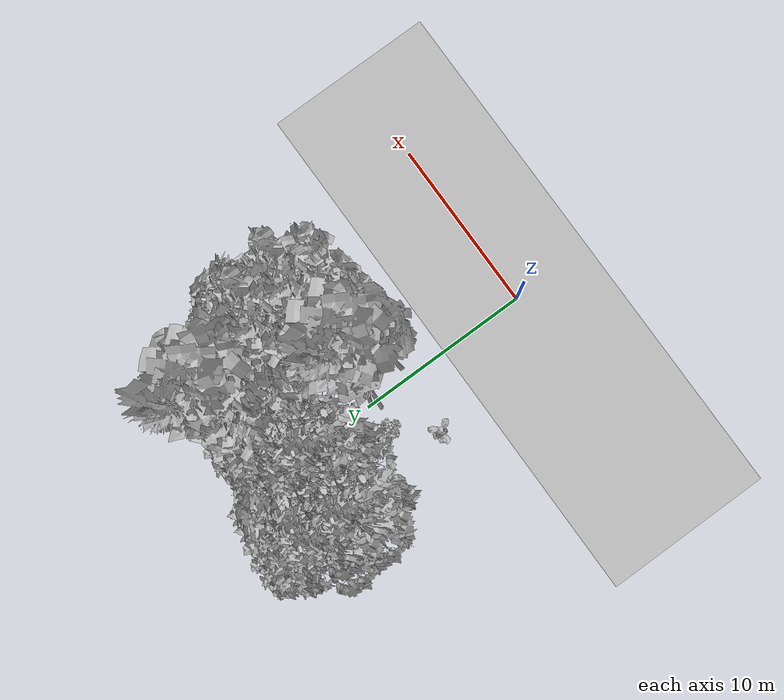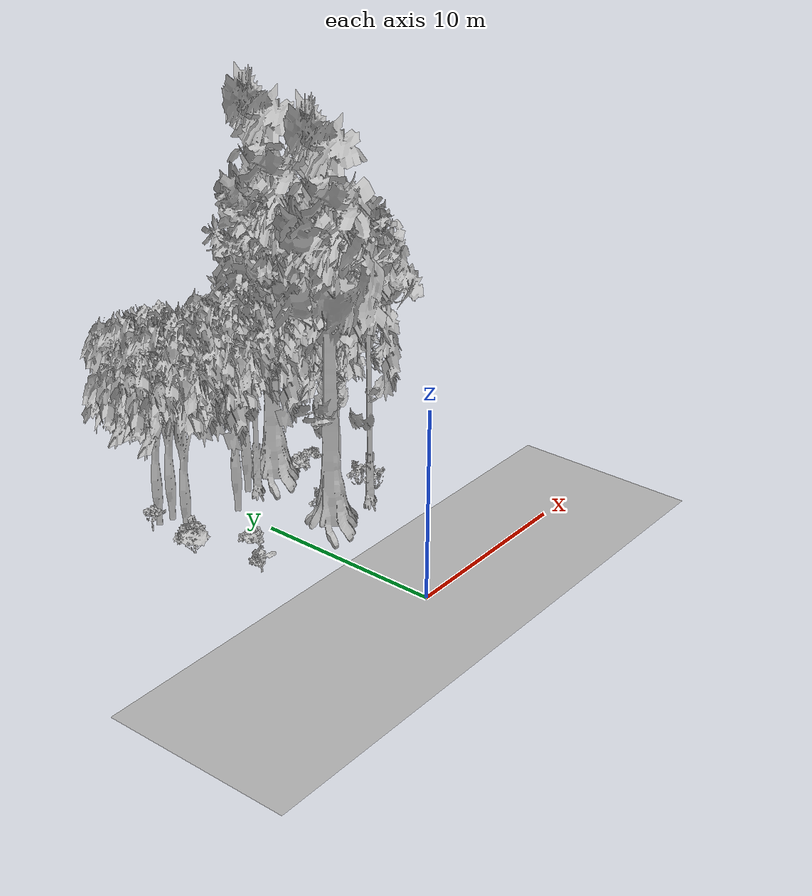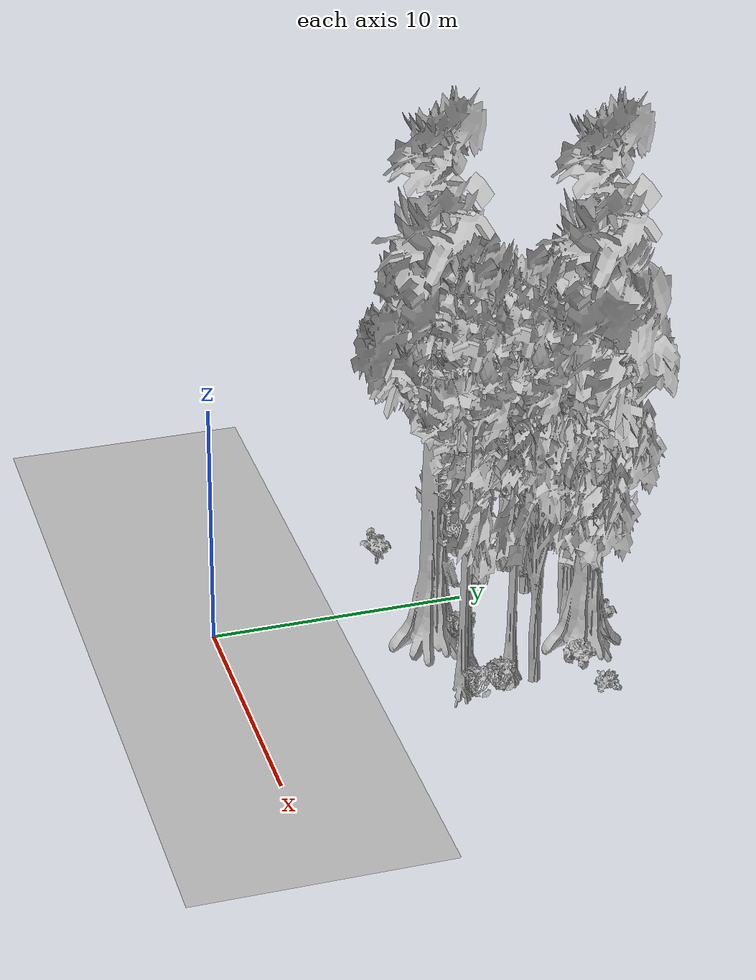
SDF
<sdf version="1.7">
 <world name="default">
  <model name="ground_plane">
   <static>1</static>
   <link name="link">
    <collision name="collision">
     <geometry><plane><normal>0 0 1</normal><size>100 100</size></plane></geometry>
     <surface><contact><ode><min_depth>0.01</min_depth><max_vel>0</max_vel></ode></contact></surface>
    </collision>
    <visual name="grass">
     <cast_shadows>0</cast_shadows>
     <geometry>
      <mesh>
       <scale>0.5814285714285714 0.18142857142857144 0.1</scale>
       <uri>file://grass_plane/meshes/grass_plane.dae</uri>
      </mesh>
     </geometry>
    </visual>
   </link>
  </model>
  <model name="Tree 15">
   <static>1</static>
   <pose>4.243417663001956 13.656715987898252 0 1.57079 -0 0</pose>
   <link name="link">
    <collision name="collision">
     <geometry><mesh><scale>3.5 5 3.5</scale><uri>model://tree_4/meshes/tree_4.obj</uri></mesh></geometry>
    </collision>
    <visual name="visual">
     <geometry><mesh><scale>3.5 5 3.5</scale><uri>model://tree_4/meshes/tree_4.obj</uri></mesh></geometry>
    </visual>
   </link>
  </model>
  <model name="Tree 93">
   <static>1</static>
   <pose>6.126630006865383 10.89849238980495 0 1.57079 -0 0</pose>
   <link name="link">
    <collision name="collision">
     <geometry><mesh><scale>3.5 5 3.5</scale><uri>model://tree_2/meshes/tree_2.obj</uri></mesh></geometry>
    </collision>
    <visual name="visual">
     <geometry><mesh><scale>3.5 5 3.5</scale><uri>model://tree_2/meshes/tree_2.obj</uri></mesh></geometry>
    </visual>
   </link>
  </model>
  <model name="Tree 119">
   <static>1</static>
   <pose>0.21786584108833296 12.601987681780127 0 1.57079 -0 0</pose>
   <link name="link">
    <collision name="collision">
     <geometry><mesh><scale>3.5 5 3.5</scale><uri>model://tree_2/meshes/tree_2.obj</uri></mesh></geometry>
    </collision>
    <visual name="visual">
     <geometry><mesh><scale>3.5 5 3.5</scale><uri>model://tree_2/meshes/tree_2.obj</uri></mesh></geometry>
    </visual>
   </link>
  </model>
  <model name="Tree 122">
   <static>1</static>
   <pose>-2.5506910763679613 14.610958272430768 0 1.57079 -0 0</pose>
   <link name="link">
    <collision name="collision">
     <geometry><mesh><scale>3.5 5 3.5</scale><uri>model://tree_2/meshes/tree_2.obj</uri></mesh></geometry>
    </collision>
    <visual name="visual">
     <geometry><mesh><scale>3.5 5 3.5</scale><uri>model://tree_2/meshes/tree_2.obj</uri></mesh></geometry>
    </visual>
   </link>
  </model>
  <model name="Tree 195">
   <static>1</static>
   <pose>5.762038549386617 8.203302063644621 0 1.57079 -0 0</pose>
   <link name="link">
    <collision name="collision">
     <geometry><mesh><scale>3.5 5 3.5</scale><uri>model://tree_9/meshes/tree_9.obj</uri></mesh></geometry>
    </collision>
    <visual name="visual">
     <geometry><mesh><scale>3.5 5 3.5</scale><uri>model://tree_9/meshes/tree_9.obj</uri></mesh></geometry>
    </visual>
   </link>
  </model>
  <model name="Tree 200">
   <static>1</static>
   <pose>-3.3457300089544475 14.752625470887217 0 1.57079 -0 0</pose>
   <link name="link">
    <collision name="collision">
     <geometry><mesh><scale>3.5 5 3.5</scale><uri>model://tree_2/meshes/tree_2.obj</uri></mesh></geometry>
    </collision>
    <visual name="visual">
     <geometry><mesh><scale>3.5 5 3.5</scale><uri>model://tree_2/meshes/tree_2.obj</uri></mesh></geometry>
    </visual>
   </link>
  </model>
  <model name="Tree 240">
   <static>1</static>
   <pose>2.4524010546151374 8.044721747381345 0 1.57079 -0 0</pose>
   <link name="link">
    <collision name="collision">
     <geometry><mesh><scale>3.5 5 3.5</scale><uri>model://tree_4/meshes/tree_4.obj</uri></mesh></geometry>
    </collision>
    <visual name="visual">
     <geometry><mesh><scale>3.5 5 3.5</scale><uri>model://tree_4/meshes/tree_4.obj</uri></mesh></geometry>
    </visual>
   </link>
  </model>
  <model name="Tree 289">
   <static>1</static>
   <pose>-3.171228740380407 12.916863051319769 0 1.57079 -0 0</pose>
   <link name="link">
    <collision name="collision">
     <geometry><mesh><scale>3.5 5 3.5</scale><uri>model://tree_2/meshes/tree_2.obj</uri></mesh></geometry>
    </collision>
    <visual name="visual">
     <geometry><mesh><scale>3.5 5 3.5</scale><uri>model://tree_2/meshes/tree_2.obj</uri></mesh></geometry>
    </visual>
   </link>
  </model>
  <model name="Tree 301">
   <static>1</static>
   <pose>2.752878326171441 13.493912979956395 0 1.57079 -0 0</pose>
   <link name="link">
    <collision name="collision">
     <geometry><mesh><scale>3.5 5 3.5</scale><uri>model://tree_9/meshes/tree_9.obj</uri></mesh></geometry>
    </collision>
    <visual name="visual">
     <geometry><mesh><scale>3.5 5 3.5</scale><uri>model://tree_9/meshes/tree_9.obj</uri></mesh></geometry>
    </visual>
   </link>
  </model>
  <model name="Tree 308">
   <static>1</static>
   <pose>3.823450982912 9.003059732522779 0 1.57079 -0 0</pose>
   <link name="link">
    <collision name="collision">
     <geometry><mesh><scale>3.5 5 3.5</scale><uri>model://tree_9/meshes/tree_9.obj</uri></mesh></geometry>
    </collision>
    <visual name="visual">
     <geometry><mesh><scale>3.5 5 3.5</scale><uri>model://tree_9/meshes/tree_9.obj</uri></mesh></geometry>
    </visual>
   </link>
  </model>
  <model name="Tree 316">
   <static>1</static>
   <pose>2.0016492739852936 13.56419705472624 0 1.57079 -0 0</pose>
   <link name="link">
    <collision name="collision">
     <geometry><mesh><scale>3.5 5 3.5</scale><uri>model://tree_2/meshes/tree_2.obj</uri></mesh></geometry>
    </collision>
    <visual name="visual">
     <geometry><mesh><scale>3.5 5 3.5</scale><uri>model://tree_2/meshes/tree_2.obj</uri></mesh></geometry>
    </visual>
   </link>
  </model>
  <model name="Tree 322">
   <static>1</static>
   <pose>5.251606947051776 10.297547755342944 0 1.57079 -0 0</pose>
   <link name="link">
    <collision name="collision">
     <geometry><mesh><scale>3.5 5 3.5</scale><uri>model://tree_9/meshes/tree_9.obj</uri></mesh></geometry>
    </collision>
    <visual name="visual">
     <geometry><mesh><scale>3.5 5 3.5</scale><uri>model://tree_9/meshes/tree_9.obj</uri></mesh></geometry>
    </visual>
   </link>
  </model>
  <model name="Bush 40">
   <static>1</static>
   <pose>-3.304977677790667 7.6090469611980325 0 1.57079 -0 0</pose>
   <link name="link">
    <collision name="collision">
     <geometry><mesh><scale>2 2 2</scale><uri>model://bush_0/meshes/bush_0.obj</uri></mesh></geometry>
     <surface><contact><collide_without_contact>false</collide_without_contact></contact></surface>
    </collision>
    <visual name="visual">
     <geometry><mesh><scale>2 2 2</scale><uri>model://bush_0/meshes/bush_0.obj</uri></mesh></geometry>
    </visual>
   </link>
  </model>
  <model name="Bush 56">
   <static>1</static>
   <pose>5.621819443369311 13.04008215475099 0 1.57079 -0 0</pose>
   <link name="link">
    <collision name="collision">
     <geometry><mesh><scale>2 2 2</scale><uri>model://bush_3/meshes/bush_3.obj</uri></mesh></geometry>
     <surface><contact><collide_without_contact>false</collide_without_contact></contact></surface>
    </collision>
    <visual name="visual">
     <geometry><mesh><scale>2 2 2</scale><uri>model://bush_3/meshes/bush_3.obj</uri></mesh></geometry>
    </visual>
   </link>
  </model>
  <model name="Bush 150">
   <static>1</static>
   <pose>7.140352033821067 13.500924176471145 0 1.57079 -0 0</pose>
   <link name="link">
    <collision name="collision">
     <geometry><mesh><scale>2 2 2</scale><uri>model://bush_2/meshes/bush_2.obj</uri></mesh></geometry>
     <surface><contact><collide_without_contact>false</collide_without_contact></contact></surface>
    </collision>
    <visual name="visual">
     <geometry><mesh><scale>2 2 2</scale><uri>model://bush_2/meshes/bush_2.obj</uri></mesh></geometry>
    </visual>
   </link>
  </model>
  <model name="Bush 164">
   <static>1</static>
   <pose>-4.115046980545273 11.358211081304535 0 1.57079 -0 0</pose>
   <link name="link">
    <collision name="collision">
     <geometry><mesh><scale>2 2 2</scale><uri>model://bush_1/meshes/bush_1.obj</uri></mesh></geometry>
     <surface><contact><collide_without_contact>false</collide_without_contact></contact></surface>
    </collision>
    <visual name="visual">
     <geometry><mesh><scale>2 2 2</scale><uri>model://bush_1/meshes/bush_1.obj</uri></mesh></geometry>
    </visual>
   </link>
  </model>
  <model name="Bush 197">
   <static>1</static>
   <pose>6.345056242918886 9.445026784324728 0 1.57079 -0 0</pose>
   <link name="link">
    <collision name="collision">
     <geometry><mesh><scale>2 2 2</scale><uri>model://bush_4/meshes/bush_4.obj</uri></mesh></geometry>
     <surface><contact><collide_without_contact>false</collide_without_contact></contact></surface>
    </collision>
    <visual name="visual">
     <geometry><mesh><scale>2 2 2</scale><uri>model://bush_4/meshes/bush_4.obj</uri></mesh></geometry>
    </visual>
   </link>
  </model>
  <model name="Bush 201">
   <static>1</static>
   <pose>6.535264574280902 8.442628620245884 0 1.57079 -0 0</pose>
   <link name="link">
    <collision name="collision">
     <geometry><mesh><scale>2 2 2</scale><uri>model://bush_4/meshes/bush_4.obj</uri></mesh></geometry>
     <surface><contact><collide_without_contact>false</collide_without_contact></contact></surface>
    </collision>
    <visual name="visual">
     <geometry><mesh><scale>2 2 2</scale><uri>model://bush_4/meshes/bush_4.obj</uri></mesh></geometry>
    </visual>
   </link>
  </model>
  <model name="Bush 236">
   <static>1</static>
   <pose>-1.6266488249179787 9.768591973415493 0 1.57079 -0 0</pose>
   <link name="link">
    <collision name="collision">
     <geometry><mesh><scale>2 2 2</scale><uri>model://bush_3/meshes/bush_3.obj</uri></mesh></geometry>
     <surface><contact><collide_without_contact>false</collide_without_contact></contact></surface>
    </collision>
    <visual name="visual">
     <geometry><mesh><scale>2 2 2</scale><uri>model://bush_3/meshes/bush_3.obj</uri></mesh></geometry>
    </visual>
   </link>
  </model>
  <model name="Bush 248">
   <static>1</static>
   <pose>3.6133950649055038 14.582133508743418 0 1.57079 -0 0</pose>
   <link name="link">
    <collision name="collision">
     <geometry><mesh><scale>2 2 2</scale><uri>model://bush_0/meshes/bush_0.obj</uri></mesh></geometry>
     <surface><contact><collide_without_contact>false</collide_without_contact></contact></surface>
    </collision>
    <visual name="visual">
     <geometry><mesh><scale>2 2 2</scale><uri>model://bush_0/meshes/bush_0.obj</uri></mesh></geometry>
    </visual>
   </link>
  </model>
  <model name="Bush 291">
   <static>1</static>
   <pose>2.843404726147128 9.040377003359676 0 1.57079 -0 0</pose>
   <link name="link">
    <collision name="collision">
     <geometry><mesh><scale>2 2 2</scale><uri>model://bush_4/meshes/bush_4.obj</uri></mesh></geometry>
     <surface><contact><collide_without_contact>false</collide_without_contact></contact></surface>
    </collision>
    <visual name="visual">
     <geometry><mesh><scale>2 2 2</scale><uri>model://bush_4/meshes/bush_4.obj</uri></mesh></geometry>
    </visual>
   </link>
  </model>
  <model name="Bush 301">
   <static>1</static>
   <pose>-3.9495369809883343 14.507571375847316 0 1.57079 -0 0</pose>
   <link name="link">
    <collision name="collision">
     <geometry><mesh><scale>2 2 2</scale><uri>model://bush_5/meshes/bush_5.obj</uri></mesh></geometry>
     <surface><contact><collide_without_contact>false</collide_without_contact></contact></surface>
    </collision>
    <visual name="visual">
     <geometry><mesh><scale>2 2 2</scale><uri>model://bush_5/meshes/bush_5.obj</uri></mesh></geometry>
    </visual>
   </link>
  </model>
 </world>
</sdf>
